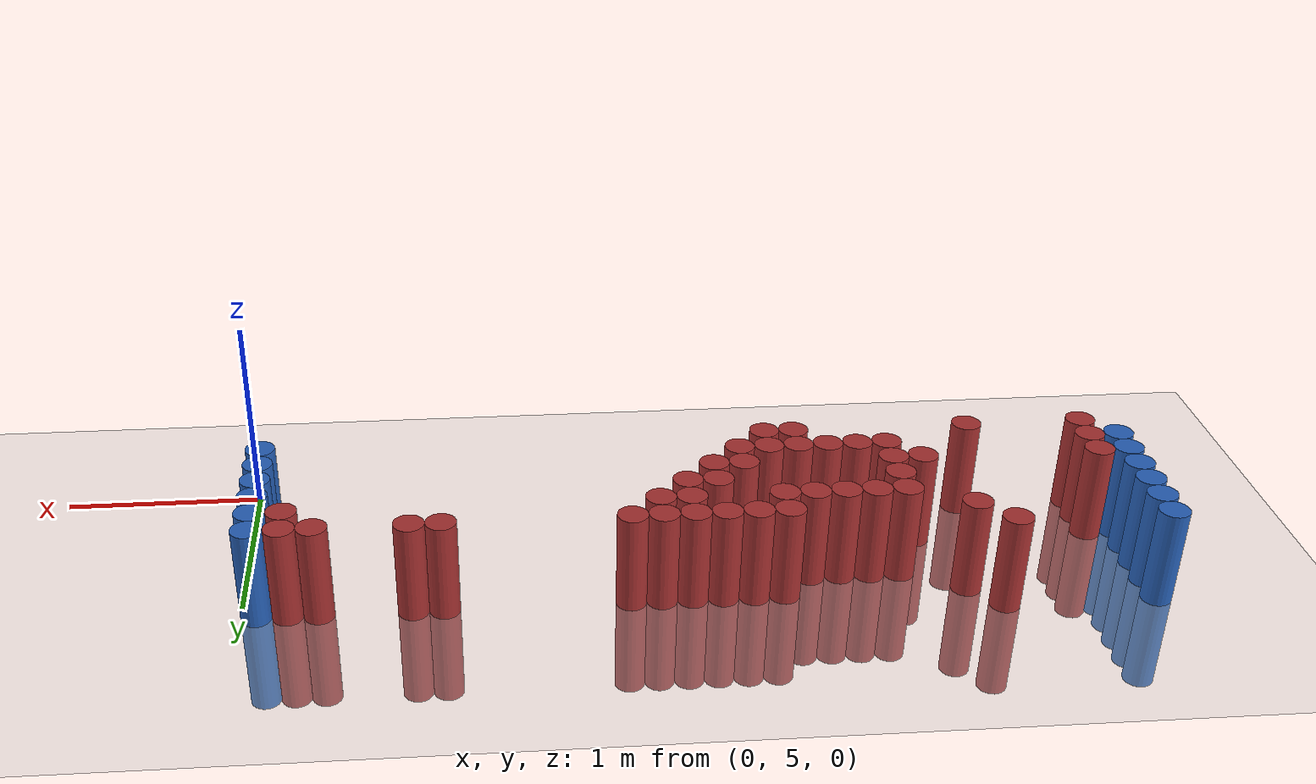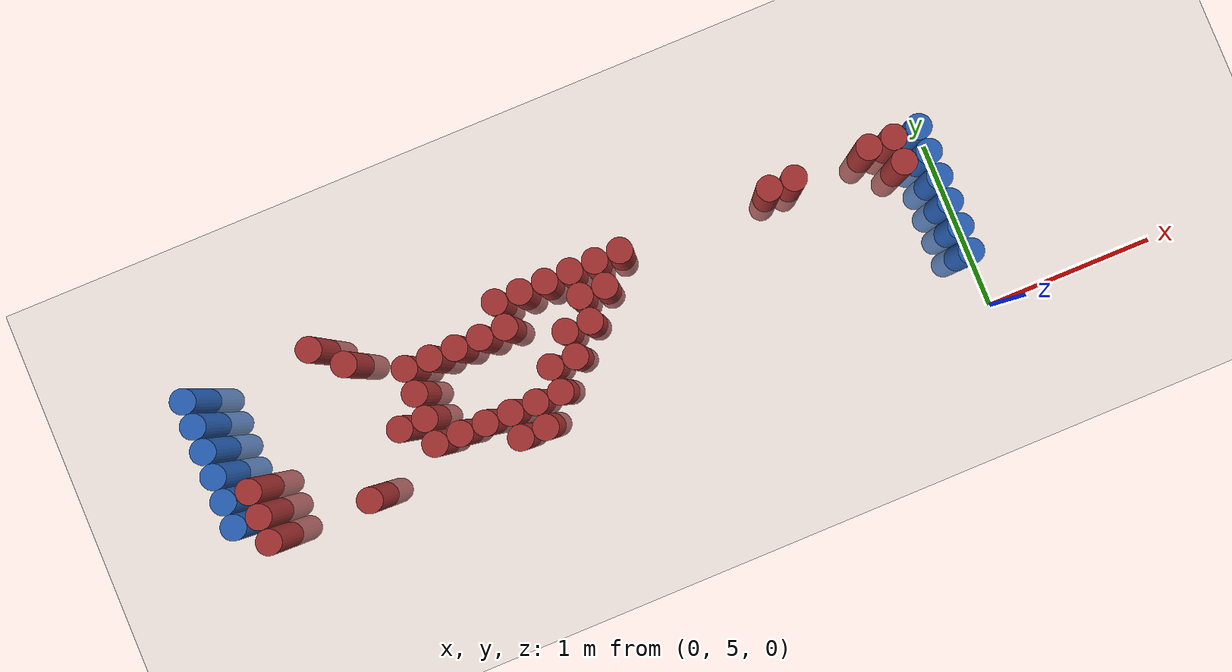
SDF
<sdf version="1.6">
 <world name="default">
  <model name="ground_plane">
   <static>1</static>
   <link name="link">
    <collision name="collision">
     <geometry><plane><normal>0 0 1</normal><size>100 100</size></plane></geometry>
     <surface><friction><ode><mu>100</mu><mu2>50</mu2></ode></friction></surface>
    </collision>
    <visual name="visual">
     <cast_shadows>0</cast_shadows>
     <geometry><plane><normal>0 0 1</normal><size>100 100</size></plane></geometry>
     <material>
      <script><uri>file://media/materials/scripts/gazebo.material</uri><name>Gazebo/Grey</name></script>
     </material>
    </visual>
   </link>
  </model>
  <model name="unit_cylinder_98">
   <static>1</static>
   <pose>-4.425000 5.475000 0.000000 0.000000 0.000000 0.000000</pose>
   <link name="link">
    <inertial>
     <mass>1</mass>
     <inertia><ixx>0.145833</ixx><ixy>0</ixy><ixz>0</ixz><iyy>0.145833</iyy><iyz>0</iyz><izz>0.125</izz></inertia>
    </inertial>
    <collision name="collision">
     <geometry><cylinder><radius>0.075000</radius><length>1</length></cylinder></geometry>
    </collision>
    <visual name="visual">
     <geometry><cylinder><radius>0.075000</radius><length>1</length></cylinder></geometry>
     <material>
      <ambient>0.152000 0.379000 0.720000 1</ambient>
      <diffuse>0.152000 0.379000 0.720000 1</diffuse>
     </material>
     <material>
      <script><name>Gazebo/Grey</name><uri>file://media/materials/scripts/gazebo.material</uri></script>
     </material>
    </visual>
   </link>
  </model>
  <model name="unit_cylinder_99">
   <static>1</static>
   <pose>-4.425000 5.625000 0.000000 0.000000 0.000000 0.000000</pose>
   <link name="link">
    <inertial>
     <mass>1</mass>
     <inertia><ixx>0.145833</ixx><ixy>0</ixy><ixz>0</ixz><iyy>0.145833</iyy><iyz>0</iyz><izz>0.125</izz></inertia>
    </inertial>
    <collision name="collision">
     <geometry><cylinder><radius>0.075000</radius><length>1</length></cylinder></geometry>
    </collision>
    <visual name="visual">
     <geometry><cylinder><radius>0.075000</radius><length>1</length></cylinder></geometry>
     <material>
      <ambient>0.152000 0.379000 0.720000 1</ambient>
      <diffuse>0.152000 0.379000 0.720000 1</diffuse>
     </material>
     <material>
      <script><name>Gazebo/Grey</name><uri>file://media/materials/scripts/gazebo.material</uri></script>
     </material>
    </visual>
   </link>
  </model>
  <model name="unit_cylinder_100">
   <static>1</static>
   <pose>-4.425000 5.775000 0.000000 0.000000 0.000000 0.000000</pose>
   <link name="link">
    <inertial>
     <mass>1</mass>
     <inertia><ixx>0.145833</ixx><ixy>0</ixy><ixz>0</ixz><iyy>0.145833</iyy><iyz>0</iyz><izz>0.125</izz></inertia>
    </inertial>
    <collision name="collision">
     <geometry><cylinder><radius>0.075000</radius><length>1</length></cylinder></geometry>
    </collision>
    <visual name="visual">
     <geometry><cylinder><radius>0.075000</radius><length>1</length></cylinder></geometry>
     <material>
      <ambient>0.152000 0.379000 0.720000 1</ambient>
      <diffuse>0.152000 0.379000 0.720000 1</diffuse>
     </material>
     <material>
      <script><name>Gazebo/Grey</name><uri>file://media/materials/scripts/gazebo.material</uri></script>
     </material>
    </visual>
   </link>
  </model>
  <model name="unit_cylinder_101">
   <static>1</static>
   <pose>-4.425000 5.925000 0.000000 0.000000 0.000000 0.000000</pose>
   <link name="link">
    <inertial>
     <mass>1</mass>
     <inertia><ixx>0.145833</ixx><ixy>0</ixy><ixz>0</ixz><iyy>0.145833</iyy><iyz>0</iyz><izz>0.125</izz></inertia>
    </inertial>
    <collision name="collision">
     <geometry><cylinder><radius>0.075000</radius><length>1</length></cylinder></geometry>
    </collision>
    <visual name="visual">
     <geometry><cylinder><radius>0.075000</radius><length>1</length></cylinder></geometry>
     <material>
      <ambient>0.152000 0.379000 0.720000 1</ambient>
      <diffuse>0.152000 0.379000 0.720000 1</diffuse>
     </material>
     <material>
      <script><name>Gazebo/Grey</name><uri>file://media/materials/scripts/gazebo.material</uri></script>
     </material>
    </visual>
   </link>
  </model>
  <model name="unit_cylinder_102">
   <static>1</static>
   <pose>-4.425000 6.075000 0.000000 0.000000 0.000000 0.000000</pose>
   <link name="link">
    <inertial>
     <mass>1</mass>
     <inertia><ixx>0.145833</ixx><ixy>0</ixy><ixz>0</ixz><iyy>0.145833</iyy><iyz>0</iyz><izz>0.125</izz></inertia>
    </inertial>
    <collision name="collision">
     <geometry><cylinder><radius>0.075000</radius><length>1</length></cylinder></geometry>
    </collision>
    <visual name="visual">
     <geometry><cylinder><radius>0.075000</radius><length>1</length></cylinder></geometry>
     <material>
      <ambient>0.152000 0.379000 0.720000 1</ambient>
      <diffuse>0.152000 0.379000 0.720000 1</diffuse>
     </material>
     <material>
      <script><name>Gazebo/Grey</name><uri>file://media/materials/scripts/gazebo.material</uri></script>
     </material>
    </visual>
   </link>
  </model>
  <model name="unit_cylinder_103">
   <static>1</static>
   <pose>-4.425000 6.225000 0.000000 0.000000 0.000000 0.000000</pose>
   <link name="link">
    <inertial>
     <mass>1</mass>
     <inertia><ixx>0.145833</ixx><ixy>0</ixy><ixz>0</ixz><iyy>0.145833</iyy><iyz>0</iyz><izz>0.125</izz></inertia>
    </inertial>
    <collision name="collision">
     <geometry><cylinder><radius>0.075000</radius><length>1</length></cylinder></geometry>
    </collision>
    <visual name="visual">
     <geometry><cylinder><radius>0.075000</radius><length>1</length></cylinder></geometry>
     <material>
      <ambient>0.152000 0.379000 0.720000 1</ambient>
      <diffuse>0.152000 0.379000 0.720000 1</diffuse>
     </material>
     <material>
      <script><name>Gazebo/Grey</name><uri>file://media/materials/scripts/gazebo.material</uri></script>
     </material>
    </visual>
   </link>
  </model>
  <model name="unit_cylinder_127">
   <static>1</static>
   <pose>-4.275000 5.325000 0.000000 0.000000 0.000000 0.000000</pose>
   <link name="link">
    <inertial>
     <mass>1</mass>
     <inertia><ixx>0.145833</ixx><ixy>0</ixy><ixz>0</ixz><iyy>0.145833</iyy><iyz>0</iyz><izz>0.125</izz></inertia>
    </inertial>
    <collision name="collision">
     <geometry><cylinder><radius>0.075000</radius><length>1</length></cylinder></geometry>
    </collision>
    <visual name="visual">
     <geometry><cylinder><radius>0.075000</radius><length>1</length></cylinder></geometry>
     <material>
      <ambient>0.648000 0.192000 0.192000 1</ambient>
      <diffuse>0.648000 0.192000 0.192000 1</diffuse>
     </material>
     <material>
      <script><name>Gazebo/Grey</name><uri>file://media/materials/scripts/gazebo.material</uri></script>
     </material>
    </visual>
   </link>
  </model>
  <model name="unit_cylinder_128">
   <static>1</static>
   <pose>-4.275000 5.475000 0.000000 0.000000 0.000000 0.000000</pose>
   <link name="link">
    <inertial>
     <mass>1</mass>
     <inertia><ixx>0.145833</ixx><ixy>0</ixy><ixz>0</ixz><iyy>0.145833</iyy><iyz>0</iyz><izz>0.125</izz></inertia>
    </inertial>
    <collision name="collision">
     <geometry><cylinder><radius>0.075000</radius><length>1</length></cylinder></geometry>
    </collision>
    <visual name="visual">
     <geometry><cylinder><radius>0.075000</radius><length>1</length></cylinder></geometry>
     <material>
      <ambient>0.648000 0.192000 0.192000 1</ambient>
      <diffuse>0.648000 0.192000 0.192000 1</diffuse>
     </material>
     <material>
      <script><name>Gazebo/Grey</name><uri>file://media/materials/scripts/gazebo.material</uri></script>
     </material>
    </visual>
   </link>
  </model>
  <model name="unit_cylinder_129">
   <static>1</static>
   <pose>-4.275000 5.625000 0.000000 0.000000 0.000000 0.000000</pose>
   <link name="link">
    <inertial>
     <mass>1</mass>
     <inertia><ixx>0.145833</ixx><ixy>0</ixy><ixz>0</ixz><iyy>0.145833</iyy><iyz>0</iyz><izz>0.125</izz></inertia>
    </inertial>
    <collision name="collision">
     <geometry><cylinder><radius>0.075000</radius><length>1</length></cylinder></geometry>
    </collision>
    <visual name="visual">
     <geometry><cylinder><radius>0.075000</radius><length>1</length></cylinder></geometry>
     <material>
      <ambient>0.648000 0.192000 0.192000 1</ambient>
      <diffuse>0.648000 0.192000 0.192000 1</diffuse>
     </material>
     <material>
      <script><name>Gazebo/Grey</name><uri>file://media/materials/scripts/gazebo.material</uri></script>
     </material>
    </visual>
   </link>
  </model>
  <model name="unit_cylinder_166">
   <static>1</static>
   <pose>-3.675000 5.325000 0.000000 0.000000 0.000000 0.000000</pose>
   <link name="link">
    <inertial>
     <mass>1</mass>
     <inertia><ixx>0.145833</ixx><ixy>0</ixy><ixz>0</ixz><iyy>0.145833</iyy><iyz>0</iyz><izz>0.125</izz></inertia>
    </inertial>
    <collision name="collision">
     <geometry><cylinder><radius>0.075000</radius><length>1</length></cylinder></geometry>
    </collision>
    <visual name="visual">
     <geometry><cylinder><radius>0.075000</radius><length>1</length></cylinder></geometry>
     <material>
      <ambient>0.648000 0.192000 0.192000 1</ambient>
      <diffuse>0.648000 0.192000 0.192000 1</diffuse>
     </material>
     <material>
      <script><name>Gazebo/Grey</name><uri>file://media/materials/scripts/gazebo.material</uri></script>
     </material>
    </visual>
   </link>
  </model>
  <model name="unit_cylinder_167">
   <static>1</static>
   <pose>-3.675000 6.225000 0.000000 0.000000 0.000000 0.000000</pose>
   <link name="link">
    <inertial>
     <mass>1</mass>
     <inertia><ixx>0.145833</ixx><ixy>0</ixy><ixz>0</ixz><iyy>0.145833</iyy><iyz>0</iyz><izz>0.125</izz></inertia>
    </inertial>
    <collision name="collision">
     <geometry><cylinder><radius>0.075000</radius><length>1</length></cylinder></geometry>
    </collision>
    <visual name="visual">
     <geometry><cylinder><radius>0.075000</radius><length>1</length></cylinder></geometry>
     <material>
      <ambient>0.648000 0.192000 0.192000 1</ambient>
      <diffuse>0.648000 0.192000 0.192000 1</diffuse>
     </material>
     <material>
      <script><name>Gazebo/Grey</name><uri>file://media/materials/scripts/gazebo.material</uri></script>
     </material>
    </visual>
   </link>
  </model>
  <model name="unit_cylinder_173">
   <static>1</static>
   <pose>-3.525000 6.075000 0.000000 0.000000 0.000000 0.000000</pose>
   <link name="link">
    <inertial>
     <mass>1</mass>
     <inertia><ixx>0.145833</ixx><ixy>0</ixy><ixz>0</ixz><iyy>0.145833</iyy><iyz>0</iyz><izz>0.125</izz></inertia>
    </inertial>
    <collision name="collision">
     <geometry><cylinder><radius>0.075000</radius><length>1</length></cylinder></geometry>
    </collision>
    <visual name="visual">
     <geometry><cylinder><radius>0.075000</radius><length>1</length></cylinder></geometry>
     <material>
      <ambient>0.648000 0.192000 0.192000 1</ambient>
      <diffuse>0.648000 0.192000 0.192000 1</diffuse>
     </material>
     <material>
      <script><name>Gazebo/Grey</name><uri>file://media/materials/scripts/gazebo.material</uri></script>
     </material>
    </visual>
   </link>
  </model>
  <model name="unit_cylinder_183">
   <static>1</static>
   <pose>-3.375000 5.625000 0.000000 0.000000 0.000000 0.000000</pose>
   <link name="link">
    <inertial>
     <mass>1</mass>
     <inertia><ixx>0.145833</ixx><ixy>0</ixy><ixz>0</ixz><iyy>0.145833</iyy><iyz>0</iyz><izz>0.125</izz></inertia>
    </inertial>
    <collision name="collision">
     <geometry><cylinder><radius>0.075000</radius><length>1</length></cylinder></geometry>
    </collision>
    <visual name="visual">
     <geometry><cylinder><radius>0.075000</radius><length>1</length></cylinder></geometry>
     <material>
      <ambient>0.648000 0.192000 0.192000 1</ambient>
      <diffuse>0.648000 0.192000 0.192000 1</diffuse>
     </material>
     <material>
      <script><name>Gazebo/Grey</name><uri>file://media/materials/scripts/gazebo.material</uri></script>
     </material>
    </visual>
   </link>
  </model>
  <model name="unit_cylinder_194">
   <static>1</static>
   <pose>-3.225000 5.475000 0.000000 0.000000 0.000000 0.000000</pose>
   <link name="link">
    <inertial>
     <mass>1</mass>
     <inertia><ixx>0.145833</ixx><ixy>0</ixy><ixz>0</ixz><iyy>0.145833</iyy><iyz>0</iyz><izz>0.125</izz></inertia>
    </inertial>
    <collision name="collision">
     <geometry><cylinder><radius>0.075000</radius><length>1</length></cylinder></geometry>
    </collision>
    <visual name="visual">
     <geometry><cylinder><radius>0.075000</radius><length>1</length></cylinder></geometry>
     <material>
      <ambient>0.648000 0.192000 0.192000 1</ambient>
      <diffuse>0.648000 0.192000 0.192000 1</diffuse>
     </material>
     <material>
      <script><name>Gazebo/Grey</name><uri>file://media/materials/scripts/gazebo.material</uri></script>
     </material>
    </visual>
   </link>
  </model>
  <model name="unit_cylinder_195">
   <static>1</static>
   <pose>-3.225000 5.625000 0.000000 0.000000 0.000000 0.000000</pose>
   <link name="link">
    <inertial>
     <mass>1</mass>
     <inertia><ixx>0.145833</ixx><ixy>0</ixy><ixz>0</ixz><iyy>0.145833</iyy><iyz>0</iyz><izz>0.125</izz></inertia>
    </inertial>
    <collision name="collision">
     <geometry><cylinder><radius>0.075000</radius><length>1</length></cylinder></geometry>
    </collision>
    <visual name="visual">
     <geometry><cylinder><radius>0.075000</radius><length>1</length></cylinder></geometry>
     <material>
      <ambient>0.648000 0.192000 0.192000 1</ambient>
      <diffuse>0.648000 0.192000 0.192000 1</diffuse>
     </material>
     <material>
      <script><name>Gazebo/Grey</name><uri>file://media/materials/scripts/gazebo.material</uri></script>
     </material>
    </visual>
   </link>
  </model>
  <model name="unit_cylinder_196">
   <static>1</static>
   <pose>-3.225000 5.775000 0.000000 0.000000 0.000000 0.000000</pose>
   <link name="link">
    <inertial>
     <mass>1</mass>
     <inertia><ixx>0.145833</ixx><ixy>0</ixy><ixz>0</ixz><iyy>0.145833</iyy><iyz>0</iyz><izz>0.125</izz></inertia>
    </inertial>
    <collision name="collision">
     <geometry><cylinder><radius>0.075000</radius><length>1</length></cylinder></geometry>
    </collision>
    <visual name="visual">
     <geometry><cylinder><radius>0.075000</radius><length>1</length></cylinder></geometry>
     <material>
      <ambient>0.648000 0.192000 0.192000 1</ambient>
      <diffuse>0.648000 0.192000 0.192000 1</diffuse>
     </material>
     <material>
      <script><name>Gazebo/Grey</name><uri>file://media/materials/scripts/gazebo.material</uri></script>
     </material>
    </visual>
   </link>
  </model>
  <model name="unit_cylinder_197">
   <static>1</static>
   <pose>-3.225000 5.925000 0.000000 0.000000 0.000000 0.000000</pose>
   <link name="link">
    <inertial>
     <mass>1</mass>
     <inertia><ixx>0.145833</ixx><ixy>0</ixy><ixz>0</ixz><iyy>0.145833</iyy><iyz>0</iyz><izz>0.125</izz></inertia>
    </inertial>
    <collision name="collision">
     <geometry><cylinder><radius>0.075000</radius><length>1</length></cylinder></geometry>
    </collision>
    <visual name="visual">
     <geometry><cylinder><radius>0.075000</radius><length>1</length></cylinder></geometry>
     <material>
      <ambient>0.648000 0.192000 0.192000 1</ambient>
      <diffuse>0.648000 0.192000 0.192000 1</diffuse>
     </material>
     <material>
      <script><name>Gazebo/Grey</name><uri>file://media/materials/scripts/gazebo.material</uri></script>
     </material>
    </visual>
   </link>
  </model>
  <model name="unit_cylinder_207">
   <static>1</static>
   <pose>-3.075000 5.475000 0.000000 0.000000 0.000000 0.000000</pose>
   <link name="link">
    <inertial>
     <mass>1</mass>
     <inertia><ixx>0.145833</ixx><ixy>0</ixy><ixz>0</ixz><iyy>0.145833</iyy><iyz>0</iyz><izz>0.125</izz></inertia>
    </inertial>
    <collision name="collision">
     <geometry><cylinder><radius>0.075000</radius><length>1</length></cylinder></geometry>
    </collision>
    <visual name="visual">
     <geometry><cylinder><radius>0.075000</radius><length>1</length></cylinder></geometry>
     <material>
      <ambient>0.648000 0.192000 0.192000 1</ambient>
      <diffuse>0.648000 0.192000 0.192000 1</diffuse>
     </material>
     <material>
      <script><name>Gazebo/Grey</name><uri>file://media/materials/scripts/gazebo.material</uri></script>
     </material>
    </visual>
   </link>
  </model>
  <model name="unit_cylinder_208">
   <static>1</static>
   <pose>-3.075000 5.925000 0.000000 0.000000 0.000000 0.000000</pose>
   <link name="link">
    <inertial>
     <mass>1</mass>
     <inertia><ixx>0.145833</ixx><ixy>0</ixy><ixz>0</ixz><iyy>0.145833</iyy><iyz>0</iyz><izz>0.125</izz></inertia>
    </inertial>
    <collision name="collision">
     <geometry><cylinder><radius>0.075000</radius><length>1</length></cylinder></geometry>
    </collision>
    <visual name="visual">
     <geometry><cylinder><radius>0.075000</radius><length>1</length></cylinder></geometry>
     <material>
      <ambient>0.648000 0.192000 0.192000 1</ambient>
      <diffuse>0.648000 0.192000 0.192000 1</diffuse>
     </material>
     <material>
      <script><name>Gazebo/Grey</name><uri>file://media/materials/scripts/gazebo.material</uri></script>
     </material>
    </visual>
   </link>
  </model>
  <model name="unit_cylinder_210">
   <static>1</static>
   <pose>-2.925000 5.475000 0.000000 0.000000 0.000000 0.000000</pose>
   <link name="link">
    <inertial>
     <mass>1</mass>
     <inertia><ixx>0.145833</ixx><ixy>0</ixy><ixz>0</ixz><iyy>0.145833</iyy><iyz>0</iyz><izz>0.125</izz></inertia>
    </inertial>
    <collision name="collision">
     <geometry><cylinder><radius>0.075000</radius><length>1</length></cylinder></geometry>
    </collision>
    <visual name="visual">
     <geometry><cylinder><radius>0.075000</radius><length>1</length></cylinder></geometry>
     <material>
      <ambient>0.648000 0.192000 0.192000 1</ambient>
      <diffuse>0.648000 0.192000 0.192000 1</diffuse>
     </material>
     <material>
      <script><name>Gazebo/Grey</name><uri>file://media/materials/scripts/gazebo.material</uri></script>
     </material>
    </visual>
   </link>
  </model>
  <model name="unit_cylinder_211">
   <static>1</static>
   <pose>-2.925000 5.925000 0.000000 0.000000 0.000000 0.000000</pose>
   <link name="link">
    <inertial>
     <mass>1</mass>
     <inertia><ixx>0.145833</ixx><ixy>0</ixy><ixz>0</ixz><iyy>0.145833</iyy><iyz>0</iyz><izz>0.125</izz></inertia>
    </inertial>
    <collision name="collision">
     <geometry><cylinder><radius>0.075000</radius><length>1</length></cylinder></geometry>
    </collision>
    <visual name="visual">
     <geometry><cylinder><radius>0.075000</radius><length>1</length></cylinder></geometry>
     <material>
      <ambient>0.648000 0.192000 0.192000 1</ambient>
      <diffuse>0.648000 0.192000 0.192000 1</diffuse>
     </material>
     <material>
      <script><name>Gazebo/Grey</name><uri>file://media/materials/scripts/gazebo.material</uri></script>
     </material>
    </visual>
   </link>
  </model>
  <model name="unit_cylinder_218">
   <static>1</static>
   <pose>-2.775000 5.325000 0.000000 0.000000 0.000000 0.000000</pose>
   <link name="link">
    <inertial>
     <mass>1</mass>
     <inertia><ixx>0.145833</ixx><ixy>0</ixy><ixz>0</ixz><iyy>0.145833</iyy><iyz>0</iyz><izz>0.125</izz></inertia>
    </inertial>
    <collision name="collision">
     <geometry><cylinder><radius>0.075000</radius><length>1</length></cylinder></geometry>
    </collision>
    <visual name="visual">
     <geometry><cylinder><radius>0.075000</radius><length>1</length></cylinder></geometry>
     <material>
      <ambient>0.648000 0.192000 0.192000 1</ambient>
      <diffuse>0.648000 0.192000 0.192000 1</diffuse>
     </material>
     <material>
      <script><name>Gazebo/Grey</name><uri>file://media/materials/scripts/gazebo.material</uri></script>
     </material>
    </visual>
   </link>
  </model>
  <model name="unit_cylinder_219">
   <static>1</static>
   <pose>-2.775000 5.475000 0.000000 0.000000 0.000000 0.000000</pose>
   <link name="link">
    <inertial>
     <mass>1</mass>
     <inertia><ixx>0.145833</ixx><ixy>0</ixy><ixz>0</ixz><iyy>0.145833</iyy><iyz>0</iyz><izz>0.125</izz></inertia>
    </inertial>
    <collision name="collision">
     <geometry><cylinder><radius>0.075000</radius><length>1</length></cylinder></geometry>
    </collision>
    <visual name="visual">
     <geometry><cylinder><radius>0.075000</radius><length>1</length></cylinder></geometry>
     <material>
      <ambient>0.648000 0.192000 0.192000 1</ambient>
      <diffuse>0.648000 0.192000 0.192000 1</diffuse>
     </material>
     <material>
      <script><name>Gazebo/Grey</name><uri>file://media/materials/scripts/gazebo.material</uri></script>
     </material>
    </visual>
   </link>
  </model>
  <model name="unit_cylinder_220">
   <static>1</static>
   <pose>-2.775000 5.925000 0.000000 0.000000 0.000000 0.000000</pose>
   <link name="link">
    <inertial>
     <mass>1</mass>
     <inertia><ixx>0.145833</ixx><ixy>0</ixy><ixz>0</ixz><iyy>0.145833</iyy><iyz>0</iyz><izz>0.125</izz></inertia>
    </inertial>
    <collision name="collision">
     <geometry><cylinder><radius>0.075000</radius><length>1</length></cylinder></geometry>
    </collision>
    <visual name="visual">
     <geometry><cylinder><radius>0.075000</radius><length>1</length></cylinder></geometry>
     <material>
      <ambient>0.648000 0.192000 0.192000 1</ambient>
      <diffuse>0.648000 0.192000 0.192000 1</diffuse>
     </material>
     <material>
      <script><name>Gazebo/Grey</name><uri>file://media/materials/scripts/gazebo.material</uri></script>
     </material>
    </visual>
   </link>
  </model>
  <model name="unit_cylinder_231">
   <static>1</static>
   <pose>-2.625000 5.325000 0.000000 0.000000 0.000000 0.000000</pose>
   <link name="link">
    <inertial>
     <mass>1</mass>
     <inertia><ixx>0.145833</ixx><ixy>0</ixy><ixz>0</ixz><iyy>0.145833</iyy><iyz>0</iyz><izz>0.125</izz></inertia>
    </inertial>
    <collision name="collision">
     <geometry><cylinder><radius>0.075000</radius><length>1</length></cylinder></geometry>
    </collision>
    <visual name="visual">
     <geometry><cylinder><radius>0.075000</radius><length>1</length></cylinder></geometry>
     <material>
      <ambient>0.648000 0.192000 0.192000 1</ambient>
      <diffuse>0.648000 0.192000 0.192000 1</diffuse>
     </material>
     <material>
      <script><name>Gazebo/Grey</name><uri>file://media/materials/scripts/gazebo.material</uri></script>
     </material>
    </visual>
   </link>
  </model>
  <model name="unit_cylinder_232">
   <static>1</static>
   <pose>-2.625000 5.475000 0.000000 0.000000 0.000000 0.000000</pose>
   <link name="link">
    <inertial>
     <mass>1</mass>
     <inertia><ixx>0.145833</ixx><ixy>0</ixy><ixz>0</ixz><iyy>0.145833</iyy><iyz>0</iyz><izz>0.125</izz></inertia>
    </inertial>
    <collision name="collision">
     <geometry><cylinder><radius>0.075000</radius><length>1</length></cylinder></geometry>
    </collision>
    <visual name="visual">
     <geometry><cylinder><radius>0.075000</radius><length>1</length></cylinder></geometry>
     <material>
      <ambient>0.648000 0.192000 0.192000 1</ambient>
      <diffuse>0.648000 0.192000 0.192000 1</diffuse>
     </material>
     <material>
      <script><name>Gazebo/Grey</name><uri>file://media/materials/scripts/gazebo.material</uri></script>
     </material>
    </visual>
   </link>
  </model>
  <model name="unit_cylinder_233">
   <static>1</static>
   <pose>-2.625000 5.925000 0.000000 0.000000 0.000000 0.000000</pose>
   <link name="link">
    <inertial>
     <mass>1</mass>
     <inertia><ixx>0.145833</ixx><ixy>0</ixy><ixz>0</ixz><iyy>0.145833</iyy><iyz>0</iyz><izz>0.125</izz></inertia>
    </inertial>
    <collision name="collision">
     <geometry><cylinder><radius>0.075000</radius><length>1</length></cylinder></geometry>
    </collision>
    <visual name="visual">
     <geometry><cylinder><radius>0.075000</radius><length>1</length></cylinder></geometry>
     <material>
      <ambient>0.648000 0.192000 0.192000 1</ambient>
      <diffuse>0.648000 0.192000 0.192000 1</diffuse>
     </material>
     <material>
      <script><name>Gazebo/Grey</name><uri>file://media/materials/scripts/gazebo.material</uri></script>
     </material>
    </visual>
   </link>
  </model>
  <model name="unit_cylinder_234">
   <static>1</static>
   <pose>-2.625000 6.075000 0.000000 0.000000 0.000000 0.000000</pose>
   <link name="link">
    <inertial>
     <mass>1</mass>
     <inertia><ixx>0.145833</ixx><ixy>0</ixy><ixz>0</ixz><iyy>0.145833</iyy><iyz>0</iyz><izz>0.125</izz></inertia>
    </inertial>
    <collision name="collision">
     <geometry><cylinder><radius>0.075000</radius><length>1</length></cylinder></geometry>
    </collision>
    <visual name="visual">
     <geometry><cylinder><radius>0.075000</radius><length>1</length></cylinder></geometry>
     <material>
      <ambient>0.648000 0.192000 0.192000 1</ambient>
      <diffuse>0.648000 0.192000 0.192000 1</diffuse>
     </material>
     <material>
      <script><name>Gazebo/Grey</name><uri>file://media/materials/scripts/gazebo.material</uri></script>
     </material>
    </visual>
   </link>
  </model>
  <model name="unit_cylinder_242">
   <static>1</static>
   <pose>-2.475000 5.475000 0.000000 0.000000 0.000000 0.000000</pose>
   <link name="link">
    <inertial>
     <mass>1</mass>
     <inertia><ixx>0.145833</ixx><ixy>0</ixy><ixz>0</ixz><iyy>0.145833</iyy><iyz>0</iyz><izz>0.125</izz></inertia>
    </inertial>
    <collision name="collision">
     <geometry><cylinder><radius>0.075000</radius><length>1</length></cylinder></geometry>
    </collision>
    <visual name="visual">
     <geometry><cylinder><radius>0.075000</radius><length>1</length></cylinder></geometry>
     <material>
      <ambient>0.648000 0.192000 0.192000 1</ambient>
      <diffuse>0.648000 0.192000 0.192000 1</diffuse>
     </material>
     <material>
      <script><name>Gazebo/Grey</name><uri>file://media/materials/scripts/gazebo.material</uri></script>
     </material>
    </visual>
   </link>
  </model>
  <model name="unit_cylinder_243">
   <static>1</static>
   <pose>-2.475000 5.625000 0.000000 0.000000 0.000000 0.000000</pose>
   <link name="link">
    <inertial>
     <mass>1</mass>
     <inertia><ixx>0.145833</ixx><ixy>0</ixy><ixz>0</ixz><iyy>0.145833</iyy><iyz>0</iyz><izz>0.125</izz></inertia>
    </inertial>
    <collision name="collision">
     <geometry><cylinder><radius>0.075000</radius><length>1</length></cylinder></geometry>
    </collision>
    <visual name="visual">
     <geometry><cylinder><radius>0.075000</radius><length>1</length></cylinder></geometry>
     <material>
      <ambient>0.648000 0.192000 0.192000 1</ambient>
      <diffuse>0.648000 0.192000 0.192000 1</diffuse>
     </material>
     <material>
      <script><name>Gazebo/Grey</name><uri>file://media/materials/scripts/gazebo.material</uri></script>
     </material>
    </visual>
   </link>
  </model>
  <model name="unit_cylinder_244">
   <static>1</static>
   <pose>-2.475000 6.075000 0.000000 0.000000 0.000000 0.000000</pose>
   <link name="link">
    <inertial>
     <mass>1</mass>
     <inertia><ixx>0.145833</ixx><ixy>0</ixy><ixz>0</ixz><iyy>0.145833</iyy><iyz>0</iyz><izz>0.125</izz></inertia>
    </inertial>
    <collision name="collision">
     <geometry><cylinder><radius>0.075000</radius><length>1</length></cylinder></geometry>
    </collision>
    <visual name="visual">
     <geometry><cylinder><radius>0.075000</radius><length>1</length></cylinder></geometry>
     <material>
      <ambient>0.648000 0.192000 0.192000 1</ambient>
      <diffuse>0.648000 0.192000 0.192000 1</diffuse>
     </material>
     <material>
      <script><name>Gazebo/Grey</name><uri>file://media/materials/scripts/gazebo.material</uri></script>
     </material>
    </visual>
   </link>
  </model>
  <model name="unit_cylinder_250">
   <static>1</static>
   <pose>-2.325000 5.625000 0.000000 0.000000 0.000000 0.000000</pose>
   <link name="link">
    <inertial>
     <mass>1</mass>
     <inertia><ixx>0.145833</ixx><ixy>0</ixy><ixz>0</ixz><iyy>0.145833</iyy><iyz>0</iyz><izz>0.125</izz></inertia>
    </inertial>
    <collision name="collision">
     <geometry><cylinder><radius>0.075000</radius><length>1</length></cylinder></geometry>
    </collision>
    <visual name="visual">
     <geometry><cylinder><radius>0.075000</radius><length>1</length></cylinder></geometry>
     <material>
      <ambient>0.648000 0.192000 0.192000 1</ambient>
      <diffuse>0.648000 0.192000 0.192000 1</diffuse>
     </material>
     <material>
      <script><name>Gazebo/Grey</name><uri>file://media/materials/scripts/gazebo.material</uri></script>
     </material>
    </visual>
   </link>
  </model>
  <model name="unit_cylinder_251">
   <static>1</static>
   <pose>-2.325000 5.775000 0.000000 0.000000 0.000000 0.000000</pose>
   <link name="link">
    <inertial>
     <mass>1</mass>
     <inertia><ixx>0.145833</ixx><ixy>0</ixy><ixz>0</ixz><iyy>0.145833</iyy><iyz>0</iyz><izz>0.125</izz></inertia>
    </inertial>
    <collision name="collision">
     <geometry><cylinder><radius>0.075000</radius><length>1</length></cylinder></geometry>
    </collision>
    <visual name="visual">
     <geometry><cylinder><radius>0.075000</radius><length>1</length></cylinder></geometry>
     <material>
      <ambient>0.648000 0.192000 0.192000 1</ambient>
      <diffuse>0.648000 0.192000 0.192000 1</diffuse>
     </material>
     <material>
      <script><name>Gazebo/Grey</name><uri>file://media/materials/scripts/gazebo.material</uri></script>
     </material>
    </visual>
   </link>
  </model>
  <model name="unit_cylinder_252">
   <static>1</static>
   <pose>-2.325000 6.075000 0.000000 0.000000 0.000000 0.000000</pose>
   <link name="link">
    <inertial>
     <mass>1</mass>
     <inertia><ixx>0.145833</ixx><ixy>0</ixy><ixz>0</ixz><iyy>0.145833</iyy><iyz>0</iyz><izz>0.125</izz></inertia>
    </inertial>
    <collision name="collision">
     <geometry><cylinder><radius>0.075000</radius><length>1</length></cylinder></geometry>
    </collision>
    <visual name="visual">
     <geometry><cylinder><radius>0.075000</radius><length>1</length></cylinder></geometry>
     <material>
      <ambient>0.648000 0.192000 0.192000 1</ambient>
      <diffuse>0.648000 0.192000 0.192000 1</diffuse>
     </material>
     <material>
      <script><name>Gazebo/Grey</name><uri>file://media/materials/scripts/gazebo.material</uri></script>
     </material>
    </visual>
   </link>
  </model>
  <model name="unit_cylinder_260">
   <static>1</static>
   <pose>-2.175000 5.775000 0.000000 0.000000 0.000000 0.000000</pose>
   <link name="link">
    <inertial>
     <mass>1</mass>
     <inertia><ixx>0.145833</ixx><ixy>0</ixy><ixz>0</ixz><iyy>0.145833</iyy><iyz>0</iyz><izz>0.125</izz></inertia>
    </inertial>
    <collision name="collision">
     <geometry><cylinder><radius>0.075000</radius><length>1</length></cylinder></geometry>
    </collision>
    <visual name="visual">
     <geometry><cylinder><radius>0.075000</radius><length>1</length></cylinder></geometry>
     <material>
      <ambient>0.648000 0.192000 0.192000 1</ambient>
      <diffuse>0.648000 0.192000 0.192000 1</diffuse>
     </material>
     <material>
      <script><name>Gazebo/Grey</name><uri>file://media/materials/scripts/gazebo.material</uri></script>
     </material>
    </visual>
   </link>
  </model>
  <model name="unit_cylinder_261">
   <static>1</static>
   <pose>-2.175000 5.925000 0.000000 0.000000 0.000000 0.000000</pose>
   <link name="link">
    <inertial>
     <mass>1</mass>
     <inertia><ixx>0.145833</ixx><ixy>0</ixy><ixz>0</ixz><iyy>0.145833</iyy><iyz>0</iyz><izz>0.125</izz></inertia>
    </inertial>
    <collision name="collision">
     <geometry><cylinder><radius>0.075000</radius><length>1</length></cylinder></geometry>
    </collision>
    <visual name="visual">
     <geometry><cylinder><radius>0.075000</radius><length>1</length></cylinder></geometry>
     <material>
      <ambient>0.648000 0.192000 0.192000 1</ambient>
      <diffuse>0.648000 0.192000 0.192000 1</diffuse>
     </material>
     <material>
      <script><name>Gazebo/Grey</name><uri>file://media/materials/scripts/gazebo.material</uri></script>
     </material>
    </visual>
   </link>
  </model>
  <model name="unit_cylinder_262">
   <static>1</static>
   <pose>-2.175000 6.075000 0.000000 0.000000 0.000000 0.000000</pose>
   <link name="link">
    <inertial>
     <mass>1</mass>
     <inertia><ixx>0.145833</ixx><ixy>0</ixy><ixz>0</ixz><iyy>0.145833</iyy><iyz>0</iyz><izz>0.125</izz></inertia>
    </inertial>
    <collision name="collision">
     <geometry><cylinder><radius>0.075000</radius><length>1</length></cylinder></geometry>
    </collision>
    <visual name="visual">
     <geometry><cylinder><radius>0.075000</radius><length>1</length></cylinder></geometry>
     <material>
      <ambient>0.648000 0.192000 0.192000 1</ambient>
      <diffuse>0.648000 0.192000 0.192000 1</diffuse>
     </material>
     <material>
      <script><name>Gazebo/Grey</name><uri>file://media/materials/scripts/gazebo.material</uri></script>
     </material>
    </visual>
   </link>
  </model>
  <model name="unit_cylinder_268">
   <static>1</static>
   <pose>-2.025000 5.925000 0.000000 0.000000 0.000000 0.000000</pose>
   <link name="link">
    <inertial>
     <mass>1</mass>
     <inertia><ixx>0.145833</ixx><ixy>0</ixy><ixz>0</ixz><iyy>0.145833</iyy><iyz>0</iyz><izz>0.125</izz></inertia>
    </inertial>
    <collision name="collision">
     <geometry><cylinder><radius>0.075000</radius><length>1</length></cylinder></geometry>
    </collision>
    <visual name="visual">
     <geometry><cylinder><radius>0.075000</radius><length>1</length></cylinder></geometry>
     <material>
      <ambient>0.648000 0.192000 0.192000 1</ambient>
      <diffuse>0.648000 0.192000 0.192000 1</diffuse>
     </material>
     <material>
      <script><name>Gazebo/Grey</name><uri>file://media/materials/scripts/gazebo.material</uri></script>
     </material>
    </visual>
   </link>
  </model>
  <model name="unit_cylinder_269">
   <static>1</static>
   <pose>-2.025000 6.075000 0.000000 0.000000 0.000000 0.000000</pose>
   <link name="link">
    <inertial>
     <mass>1</mass>
     <inertia><ixx>0.145833</ixx><ixy>0</ixy><ixz>0</ixz><iyy>0.145833</iyy><iyz>0</iyz><izz>0.125</izz></inertia>
    </inertial>
    <collision name="collision">
     <geometry><cylinder><radius>0.075000</radius><length>1</length></cylinder></geometry>
    </collision>
    <visual name="visual">
     <geometry><cylinder><radius>0.075000</radius><length>1</length></cylinder></geometry>
     <material>
      <ambient>0.648000 0.192000 0.192000 1</ambient>
      <diffuse>0.648000 0.192000 0.192000 1</diffuse>
     </material>
     <material>
      <script><name>Gazebo/Grey</name><uri>file://media/materials/scripts/gazebo.material</uri></script>
     </material>
    </visual>
   </link>
  </model>
  <model name="unit_cylinder_274">
   <static>1</static>
   <pose>-1.875000 6.075000 0.000000 0.000000 0.000000 0.000000</pose>
   <link name="link">
    <inertial>
     <mass>1</mass>
     <inertia><ixx>0.145833</ixx><ixy>0</ixy><ixz>0</ixz><iyy>0.145833</iyy><iyz>0</iyz><izz>0.125</izz></inertia>
    </inertial>
    <collision name="collision">
     <geometry><cylinder><radius>0.075000</radius><length>1</length></cylinder></geometry>
    </collision>
    <visual name="visual">
     <geometry><cylinder><radius>0.075000</radius><length>1</length></cylinder></geometry>
     <material>
      <ambient>0.648000 0.192000 0.192000 1</ambient>
      <diffuse>0.648000 0.192000 0.192000 1</diffuse>
     </material>
     <material>
      <script><name>Gazebo/Grey</name><uri>file://media/materials/scripts/gazebo.material</uri></script>
     </material>
    </visual>
   </link>
  </model>
  <model name="unit_cylinder_278">
   <static>1</static>
   <pose>-0.975000 6.075000 0.000000 0.000000 0.000000 0.000000</pose>
   <link name="link">
    <inertial>
     <mass>1</mass>
     <inertia><ixx>0.145833</ixx><ixy>0</ixy><ixz>0</ixz><iyy>0.145833</iyy><iyz>0</iyz><izz>0.125</izz></inertia>
    </inertial>
    <collision name="collision">
     <geometry><cylinder><radius>0.075000</radius><length>1</length></cylinder></geometry>
    </collision>
    <visual name="visual">
     <geometry><cylinder><radius>0.075000</radius><length>1</length></cylinder></geometry>
     <material>
      <ambient>0.648000 0.192000 0.192000 1</ambient>
      <diffuse>0.648000 0.192000 0.192000 1</diffuse>
     </material>
     <material>
      <script><name>Gazebo/Grey</name><uri>file://media/materials/scripts/gazebo.material</uri></script>
     </material>
    </visual>
   </link>
  </model>
  <model name="unit_cylinder_284">
   <static>1</static>
   <pose>-0.825000 6.075000 0.000000 0.000000 0.000000 0.000000</pose>
   <link name="link">
    <inertial>
     <mass>1</mass>
     <inertia><ixx>0.145833</ixx><ixy>0</ixy><ixz>0</ixz><iyy>0.145833</iyy><iyz>0</iyz><izz>0.125</izz></inertia>
    </inertial>
    <collision name="collision">
     <geometry><cylinder><radius>0.075000</radius><length>1</length></cylinder></geometry>
    </collision>
    <visual name="visual">
     <geometry><cylinder><radius>0.075000</radius><length>1</length></cylinder></geometry>
     <material>
      <ambient>0.648000 0.192000 0.192000 1</ambient>
      <diffuse>0.648000 0.192000 0.192000 1</diffuse>
     </material>
     <material>
      <script><name>Gazebo/Grey</name><uri>file://media/materials/scripts/gazebo.material</uri></script>
     </material>
    </visual>
   </link>
  </model>
  <model name="unit_cylinder_302">
   <static>1</static>
   <pose>-0.375000 6.075000 0.000000 0.000000 0.000000 0.000000</pose>
   <link name="link">
    <inertial>
     <mass>1</mass>
     <inertia><ixx>0.145833</ixx><ixy>0</ixy><ixz>0</ixz><iyy>0.145833</iyy><iyz>0</iyz><izz>0.125</izz></inertia>
    </inertial>
    <collision name="collision">
     <geometry><cylinder><radius>0.075000</radius><length>1</length></cylinder></geometry>
    </collision>
    <visual name="visual">
     <geometry><cylinder><radius>0.075000</radius><length>1</length></cylinder></geometry>
     <material>
      <ambient>0.648000 0.192000 0.192000 1</ambient>
      <diffuse>0.648000 0.192000 0.192000 1</diffuse>
     </material>
     <material>
      <script><name>Gazebo/Grey</name><uri>file://media/materials/scripts/gazebo.material</uri></script>
     </material>
    </visual>
   </link>
  </model>
  <model name="unit_cylinder_316">
   <static>1</static>
   <pose>-0.225000 5.925000 0.000000 0.000000 0.000000 0.000000</pose>
   <link name="link">
    <inertial>
     <mass>1</mass>
     <inertia><ixx>0.145833</ixx><ixy>0</ixy><ixz>0</ixz><iyy>0.145833</iyy><iyz>0</iyz><izz>0.125</izz></inertia>
    </inertial>
    <collision name="collision">
     <geometry><cylinder><radius>0.075000</radius><length>1</length></cylinder></geometry>
    </collision>
    <visual name="visual">
     <geometry><cylinder><radius>0.075000</radius><length>1</length></cylinder></geometry>
     <material>
      <ambient>0.648000 0.192000 0.192000 1</ambient>
      <diffuse>0.648000 0.192000 0.192000 1</diffuse>
     </material>
     <material>
      <script><name>Gazebo/Grey</name><uri>file://media/materials/scripts/gazebo.material</uri></script>
     </material>
    </visual>
   </link>
  </model>
  <model name="unit_cylinder_317">
   <static>1</static>
   <pose>-0.225000 6.075000 0.000000 0.000000 0.000000 0.000000</pose>
   <link name="link">
    <inertial>
     <mass>1</mass>
     <inertia><ixx>0.145833</ixx><ixy>0</ixy><ixz>0</ixz><iyy>0.145833</iyy><iyz>0</iyz><izz>0.125</izz></inertia>
    </inertial>
    <collision name="collision">
     <geometry><cylinder><radius>0.075000</radius><length>1</length></cylinder></geometry>
    </collision>
    <visual name="visual">
     <geometry><cylinder><radius>0.075000</radius><length>1</length></cylinder></geometry>
     <material>
      <ambient>0.648000 0.192000 0.192000 1</ambient>
      <diffuse>0.648000 0.192000 0.192000 1</diffuse>
     </material>
     <material>
      <script><name>Gazebo/Grey</name><uri>file://media/materials/scripts/gazebo.material</uri></script>
     </material>
    </visual>
   </link>
  </model>
  <model name="unit_cylinder_332">
   <static>1</static>
   <pose>-0.075000 5.325000 0.000000 0.000000 0.000000 0.000000</pose>
   <link name="link">
    <inertial>
     <mass>1</mass>
     <inertia><ixx>0.145833</ixx><ixy>0</ixy><ixz>0</ixz><iyy>0.145833</iyy><iyz>0</iyz><izz>0.125</izz></inertia>
    </inertial>
    <collision name="collision">
     <geometry><cylinder><radius>0.075000</radius><length>1</length></cylinder></geometry>
    </collision>
    <visual name="visual">
     <geometry><cylinder><radius>0.075000</radius><length>1</length></cylinder></geometry>
     <material>
      <ambient>0.152000 0.379000 0.720000 1</ambient>
      <diffuse>0.152000 0.379000 0.720000 1</diffuse>
     </material>
     <material>
      <script><name>Gazebo/Grey</name><uri>file://media/materials/scripts/gazebo.material</uri></script>
     </material>
    </visual>
   </link>
  </model>
  <model name="unit_cylinder_333">
   <static>1</static>
   <pose>-0.075000 5.475000 0.000000 0.000000 0.000000 0.000000</pose>
   <link name="link">
    <inertial>
     <mass>1</mass>
     <inertia><ixx>0.145833</ixx><ixy>0</ixy><ixz>0</ixz><iyy>0.145833</iyy><iyz>0</iyz><izz>0.125</izz></inertia>
    </inertial>
    <collision name="collision">
     <geometry><cylinder><radius>0.075000</radius><length>1</length></cylinder></geometry>
    </collision>
    <visual name="visual">
     <geometry><cylinder><radius>0.075000</radius><length>1</length></cylinder></geometry>
     <material>
      <ambient>0.152000 0.379000 0.720000 1</ambient>
      <diffuse>0.152000 0.379000 0.720000 1</diffuse>
     </material>
     <material>
      <script><name>Gazebo/Grey</name><uri>file://media/materials/scripts/gazebo.material</uri></script>
     </material>
    </visual>
   </link>
  </model>
  <model name="unit_cylinder_334">
   <static>1</static>
   <pose>-0.075000 5.625000 0.000000 0.000000 0.000000 0.000000</pose>
   <link name="link">
    <inertial>
     <mass>1</mass>
     <inertia><ixx>0.145833</ixx><ixy>0</ixy><ixz>0</ixz><iyy>0.145833</iyy><iyz>0</iyz><izz>0.125</izz></inertia>
    </inertial>
    <collision name="collision">
     <geometry><cylinder><radius>0.075000</radius><length>1</length></cylinder></geometry>
    </collision>
    <visual name="visual">
     <geometry><cylinder><radius>0.075000</radius><length>1</length></cylinder></geometry>
     <material>
      <ambient>0.152000 0.379000 0.720000 1</ambient>
      <diffuse>0.152000 0.379000 0.720000 1</diffuse>
     </material>
     <material>
      <script><name>Gazebo/Grey</name><uri>file://media/materials/scripts/gazebo.material</uri></script>
     </material>
    </visual>
   </link>
  </model>
  <model name="unit_cylinder_335">
   <static>1</static>
   <pose>-0.075000 5.775000 0.000000 0.000000 0.000000 0.000000</pose>
   <link name="link">
    <inertial>
     <mass>1</mass>
     <inertia><ixx>0.145833</ixx><ixy>0</ixy><ixz>0</ixz><iyy>0.145833</iyy><iyz>0</iyz><izz>0.125</izz></inertia>
    </inertial>
    <collision name="collision">
     <geometry><cylinder><radius>0.075000</radius><length>1</length></cylinder></geometry>
    </collision>
    <visual name="visual">
     <geometry><cylinder><radius>0.075000</radius><length>1</length></cylinder></geometry>
     <material>
      <ambient>0.152000 0.379000 0.720000 1</ambient>
      <diffuse>0.152000 0.379000 0.720000 1</diffuse>
     </material>
     <material>
      <script><name>Gazebo/Grey</name><uri>file://media/materials/scripts/gazebo.material</uri></script>
     </material>
    </visual>
   </link>
  </model>
  <model name="unit_cylinder_336">
   <static>1</static>
   <pose>-0.075000 5.925000 0.000000 0.000000 0.000000 0.000000</pose>
   <link name="link">
    <inertial>
     <mass>1</mass>
     <inertia><ixx>0.145833</ixx><ixy>0</ixy><ixz>0</ixz><iyy>0.145833</iyy><iyz>0</iyz><izz>0.125</izz></inertia>
    </inertial>
    <collision name="collision">
     <geometry><cylinder><radius>0.075000</radius><length>1</length></cylinder></geometry>
    </collision>
    <visual name="visual">
     <geometry><cylinder><radius>0.075000</radius><length>1</length></cylinder></geometry>
     <material>
      <ambient>0.152000 0.379000 0.720000 1</ambient>
      <diffuse>0.152000 0.379000 0.720000 1</diffuse>
     </material>
     <material>
      <script><name>Gazebo/Grey</name><uri>file://media/materials/scripts/gazebo.material</uri></script>
     </material>
    </visual>
   </link>
  </model>
  <model name="unit_cylinder_337">
   <static>1</static>
   <pose>-0.075000 6.075000 0.000000 0.000000 0.000000 0.000000</pose>
   <link name="link">
    <inertial>
     <mass>1</mass>
     <inertia><ixx>0.145833</ixx><ixy>0</ixy><ixz>0</ixz><iyy>0.145833</iyy><iyz>0</iyz><izz>0.125</izz></inertia>
    </inertial>
    <collision name="collision">
     <geometry><cylinder><radius>0.075000</radius><length>1</length></cylinder></geometry>
    </collision>
    <visual name="visual">
     <geometry><cylinder><radius>0.075000</radius><length>1</length></cylinder></geometry>
     <material>
      <ambient>0.152000 0.379000 0.720000 1</ambient>
      <diffuse>0.152000 0.379000 0.720000 1</diffuse>
     </material>
     <material>
      <script><name>Gazebo/Grey</name><uri>file://media/materials/scripts/gazebo.material</uri></script>
     </material>
    </visual>
   </link>
  </model>
 </world>
</sdf>
